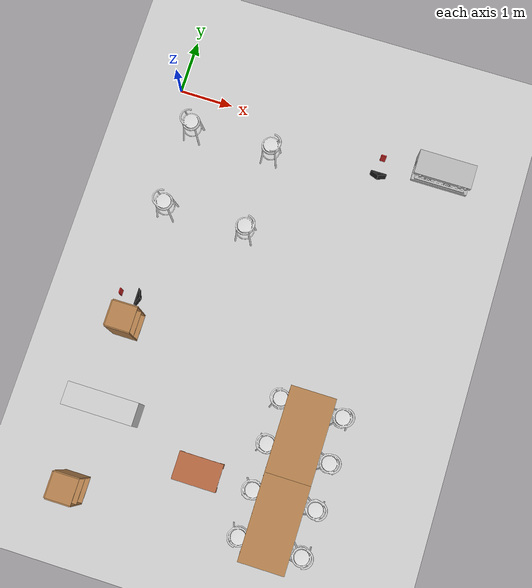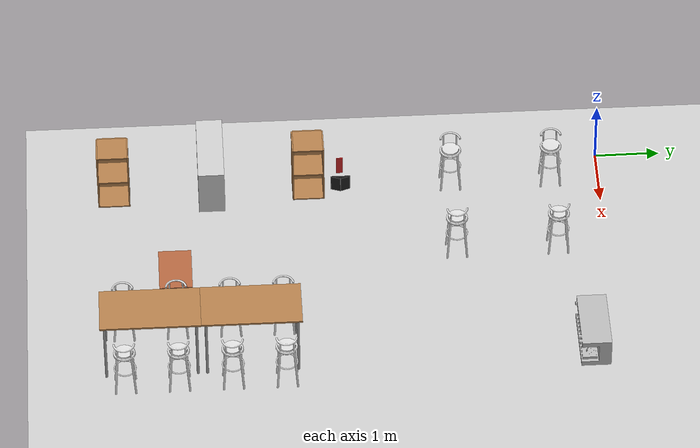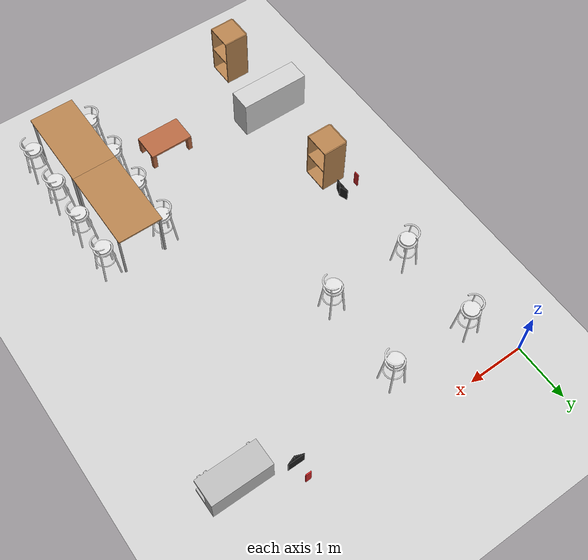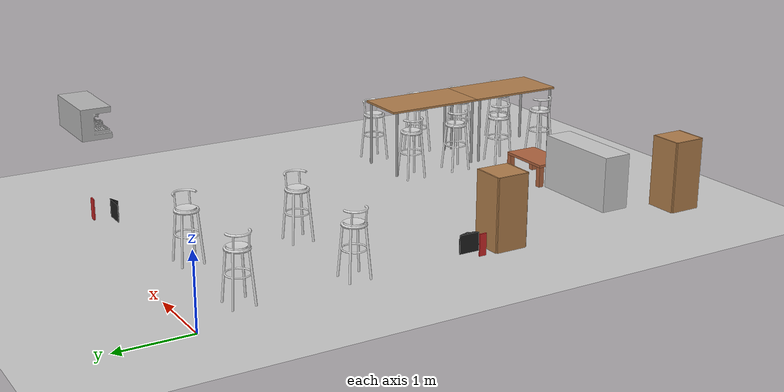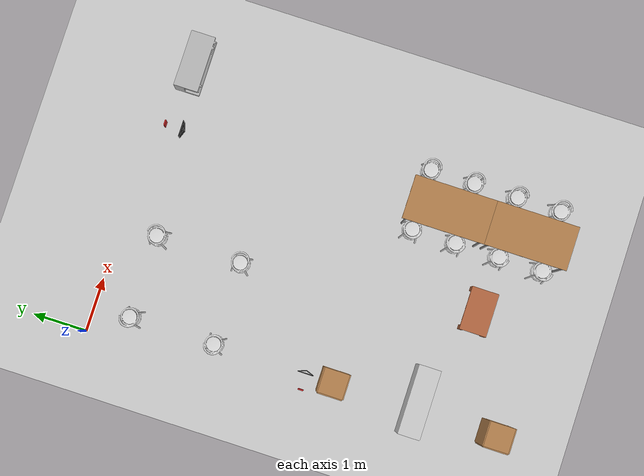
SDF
<sdf version="1.6">
 <world name="default">
  <include><uri>model://ground_plane</uri></include>
  <include><uri>model://sun</uri></include>
  <scene><shadows>false</shadows></scene>
  <physics type="ode">
   <real_time_update_rate>1000.0</real_time_update_rate>
   <max_step_size>0.001</max_step_size>
   <real_time_factor>1</real_time_factor>
   <ode>
    <solver>
     <type>quick</type>
     <iters>150</iters>
     <precon_iters>0</precon_iters>
     <sor>1.400000</sor>
     <use_dynamic_moi_rescaling>1</use_dynamic_moi_rescaling>
    </solver>
    <constraints>
     <cfm>0.00001</cfm>
     <erp>0.2</erp>
     <contact_max_correcting_vel>2000.000000</contact_max_correcting_vel>
     <contact_surface_layer>0.01000</contact_surface_layer>
    </constraints>
   </ode>
  </physics>
  <model name="reflective_tag_1">
   <pose>4 -0.20 0.2 0 0 0</pose>
   <static>1</static>
   <include><uri>model://reflective_tag</uri></include>
  </model>
  <model name="reflective_tag_2">
   <pose>0.2 -4.0 0.2 0 0 1.57</pose>
   <static>1</static>
   <include><uri>model://reflective_tag</uri></include>
  </model>
  <model name="dock_1">
   <pose>4 -0.5 0 0 0 0</pose>
   <static>1</static>
   <include><uri>model://trapezium</uri></include>
  </model>
  <model name="dock_2">
   <pose>0.5 -4.0 0.0 0 0 1.57</pose>
   <static>1</static>
   <include><uri>model://trapezium</uri></include>
  </model>
  <model name="couch">
   <static>1</static>
   <include><uri>model://couch</uri></include>
   <pose>0.65 -6.0 0.35 0 0 1.57</pose>
  </model>
  <model name="barstool_9">
   <static>1</static>
   <include><uri>model://barstool</uri></include>
   <pose>0.5 -0.75 0 1.57 0 1.57</pose>
  </model>
  <model name="barstool_10">
   <static>1</static>
   <include><uri>model://barstool</uri></include>
   <pose>0.5 -2.3 0 1.57 0 1.57</pose>
  </model>
  <model name="barstool_11">
   <static>1</static>
   <include><uri>model://barstool</uri></include>
   <pose>2.0 -0.75 0 1.57 0 -1.57</pose>
  </model>
  <model name="barstool_12">
   <static>1</static>
   <include><uri>model://barstool</uri></include>
   <pose>2.0 -2.3 0 1.57 0 -1.57</pose>
  </model>
  <model name="coffee_table">
   <static>1</static>
   <include><uri>model://coffee_table</uri></include>
   <pose>2.5 -6.6 0 0 0 1.57</pose>
  </model>
  <model name="cabinet">
   <static>1</static>
   <include><uri>model://cabinet</uri></include>
   <pose>0.5 -4.5 0 0 0 3.1416</pose>
  </model>
  <model name="cabinet_2">
   <static>1</static>
   <include><uri>model://cabinet</uri></include>
   <pose>0.5 -7.5 0 0 0 3.1416</pose>
  </model>
  <model name="high_table">
   <static>1</static>
   <include><uri>model://table</uri></include>
   <pose>4.0 -5.5 0 0 0 1.57</pose>
  </model>
  <model name="high_table_2">
   <static>1</static>
   <include><uri>model://table</uri></include>
   <pose>4.0 -7.0 0 0 0 1.57</pose>
  </model>
  <model name="espresso_machine">
   <static>1</static>
   <include><uri>model://espresso_machine</uri></include>
   <pose>5.0 -0.5 0.9 0 0 0</pose>
  </model>
  <model name="barstool">
   <static>1</static>
   <include><uri>model://barstool</uri></include>
   <pose>3.5 -5.0 0 1.57 0 1.57</pose>
  </model>
  <model name="barstool_2">
   <static>1</static>
   <include><uri>model://barstool</uri></include>
   <pose>3.5 -5.8 0 1.57 0 1.57</pose>
  </model>
  <model name="barstool_3">
   <static>1</static>
   <include><uri>model://barstool</uri></include>
   <pose>3.5 -6.6 0 1.57 0 1.57</pose>
  </model>
  <model name="barstool_4">
   <static>1</static>
   <include><uri>model://barstool</uri></include>
   <pose>3.5 -7.4 0 1.57 0 1.57</pose>
  </model>
  <model name="barstool_5">
   <static>1</static>
   <include><uri>model://barstool</uri></include>
   <pose>4.6 -5.0 0 1.57 0 -1.57</pose>
  </model>
  <model name="barstool_6">
   <static>1</static>
   <include><uri>model://barstool</uri></include>
   <pose>4.6 -5.8 0 1.57 0 -1.57</pose>
  </model>
  <model name="barstool_7">
   <static>1</static>
   <include><uri>model://barstool</uri></include>
   <pose>4.6 -6.6 0 1.57 0 -1.57</pose>
  </model>
  <model name="barstool_8">
   <static>1</static>
   <include><uri>model://barstool</uri></include>
   <pose>4.6 -7.4 0 1.57 0 -1.57</pose>
  </model>
  <light name="user_point_light_2" type="point">
   <pose>3.0 -4.5 4.0 0 0 0</pose>
   <diffuse>0.2 0.2 0.2 1</diffuse>
   <specular>0.1 0.1 0.1 1</specular>
   <attenuation>
    <range>10</range>
    <constant>0.5</constant>
    <linear>0.01</linear>
    <quadratic>0.001</quadratic>
   </attenuation>
   <cast_shadows>0</cast_shadows>
   <direction>0 0 -1</direction>
  </light>
 </world>
</sdf>

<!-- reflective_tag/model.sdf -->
<sdf version='1.4'>
  <model name="reflective_tag">
      <static>1</static>
      <link name='link'>
        <inertial>
          <mass>0.25</mass>
          <inertia>
            <ixx>0.00015</ixx>
            <ixy>0.000000</ixy>
            <ixz>0.000000</ixz>
            <iyy>0.00015</iyy>
            <iyz>0.000000</iyz>
            <izz>0.00015</izz>
          </inertia>
        </inertial>
        <collision name='collision'>
          <geometry>
            <box>
              <size>0.10 0.02 0.30</size>
            </box>
          </geometry>
          <laser_retro>8000</laser_retro>
          <surface>
            <friction>
              <ode>
                <mu>30.0</mu>
                <mu2>30.0</mu2>
              </ode>
            </friction>
            <contact>
              <ode>
                <kp>1000000.0</kp>
                <kd>100.0</kd>
                <max_vel>1.0</max_vel>
                <min_depth>0.002</min_depth>
              </ode>
            </contact>
          </surface>
        </collision>
        <visual name='visual'>
          <geometry>
            <box>
              <size>0.10 0.02 0.30</size>
            </box>
          </geometry>
          <material>
            <script>
              <uri>file://media/materials/scripts/gazebo.material</uri>
              <name>Gazebo/Red</name>
            </script>
          </material>
        </visual>
        <velocity_decay>
          <linear>0.000000</linear>
          <angular>0.000000</angular>
        </velocity_decay>
        <self_collide>0</self_collide>
        <kinematic>0</kinematic>
        <gravity>1</gravity>
      </link>
  </model>
</sdf>

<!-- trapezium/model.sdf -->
<sdf version='1.5'>
  <model name="trapezium">
      <static>1</static>
      <link name='link'>
        <inertial>
          <mass>0.25</mass>
          <inertia>
            <ixx>0.00015</ixx>
            <ixy>0.000000</ixy>
            <ixz>0.000000</ixz>
            <iyy>0.00015</iyy>
            <iyz>0.000000</iyz>
            <izz>0.00015</izz>
          </inertia>
        </inertial>
        <collision name='front_c'>
          <geometry>
            <box>
              <size>0.30 0.01 0.50</size>
            </box>
          </geometry>
          <laser_retro>8000</laser_retro>
          <surface>
            <friction>
              <ode>
                <mu>30.0</mu>
                <mu2>30.0</mu2>
              </ode>
            </friction>
            <contact>
              <ode>
                <kp>1000000.0</kp>
                <kd>100.0</kd>
                <max_vel>1.0</max_vel>
                <min_depth>0.002</min_depth>
              </ode>
            </contact>
          </surface>
        </collision>
        <visual name='front_v'>
          <geometry>
            <box>
              <size>0.30 0.01 0.50</size>
            </box>
          </geometry>
          <material>
            <script>
              <uri>file://media/materials/scripts/gazebo.material</uri>
              <name>Gazebo/Black</name>
            </script>
          </material>
        </visual>
        <collision name="side_1_c">
          <pose>0.075 -0.0256515 0 0 0 0.3490658503988659</pose>
          <geometry>
            <box>
              <size>0.159626 0.01 0.5</size>
            </box>
          </geometry>
          <laser_retro>8000</laser_retro>
        </collision>
        <visual name="side_1_v">
          <pose>0.075 -0.0256515 0 0 0 0.3490658503988659</pose>
          <geometry>
            <box>
              <size>0.159626 0.01 0.5</size>
            </box>
          </geometry>
          <material>
            <script>
              <uri>file://media/materials/scripts/gazebo.material</uri>
              <name>Gazebo/Black</name>
            </script>
          </material>
        </visual>
        <collision name="side_2_c">
          <pose>-0.075 -0.0256515 0 0 0 -0.3490658503988659</pose>
          <geometry>
            <box>
              <size>0.159626 0.01 0.5</size>
            </box>
          </geometry>
          <laser_retro>8000</laser_retro>
        </collision>
        <visual name="side_2_v">
          <pose>-0.075 -0.0256515 0 0 0 -0.3490658503988659</pose>
          <geometry>
            <box>
              <size>0.159626 0.01 0.5</size>
            </box>
          </geometry>
          <material>
            <script>
              <uri>file://media/materials/scripts/gazebo.material</uri>
              <name>Gazebo/Black</name>
            </script>
          </material>
        </visual>
        <velocity_decay>
          <linear>0.000000</linear>
          <angular>0.000000</angular>
        </velocity_decay>
        <self_collide>0</self_collide>
        <kinematic>0</kinematic>
        <gravity>1</gravity>
      </link>
  </model>
</sdf>

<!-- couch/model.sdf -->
<sdf version="1.6">
  <model name="ddw/couch">
    <link name="1_link">
      <collision name="1_col">
        <geometry>
          <box>
            <size>0.4 1.25 0.75</size>
          </box>
        </geometry>
        <pose>0.0 0.0 0.375 0 0 0</pose>
      </collision>
      <visual name="1_vis">
        <geometry>
          <box>
            <size>0.4 1.25 0.75</size>
          </box>
        </geometry>
        <material>
          <ambient>0.8 0.8 0.8 1</ambient>
        </material>
        <pose>0.0 0.0 0.375 0 0 0</pose>
      </visual>
      <pose>0 0 0 0 0 0</pose>
    </link>
    <link name="in_front_of">
      <virtual_volume name="in_front_of_vv">
        <geometry>
          <box>
            <size>0.9 0.6 0.01</size>
          </box>
        </geometry>
        <pose>0.45 0.0 0.005 0 0 0</pose>
      </virtual_volume>
    </link>
    <link name="on_top_of">
      <virtual_volume name="on_top_of_vv">
        <geometry>
          <box>
            <size>0.4 1.25 0.43</size>
          </box>
        </geometry>
        <pose>0.0 0.0 0.985 0 0 0</pose>
      </virtual_volume>
    </link>
    <static>true</static>
  </model>
</sdf>

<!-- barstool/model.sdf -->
<sdf version="1.5">
  <model name="barstool">
    <static>true</static>
    <pose>0 0 0 0 0 0</pose>
    <link name="body">
      <inertial>
        <mass>5</mass>
        <inertia>
          <ixx>1.0</ixx>
          <ixy>0.0</ixy>
          <iyy>1.0</iyy>
          <ixz>0.0</ixz>
          <iyz>0.0</iyz>
          <izz>1.0</izz>
        </inertia>
        <pose>0 0 0 0 0 0</pose>
      </inertial>
      <visual name="visual">
        <geometry>
          <mesh>
            <uri>model://barstool/meshes/barstool.dae</uri>
            <scale>0.01 0.01 0.01</scale>
          </mesh>
        </geometry>
      </visual>
    </link>
  </model>
</sdf>

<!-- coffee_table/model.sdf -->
<sdf version="1.6">
  <model name="coffee_table">
    <link name="1_link">
      <collision name="1_col">
        <geometry>
          <box>
            <size>0.5 0.8 0.04</size>
          </box>
        </geometry>
      </collision>
      <visual name="1_vis">
        <geometry>
          <box>
            <size>0.5 0.8 0.04</size>
          </box>
        </geometry>
        <material>
          <ambient>0.7 0.4 0.25 1</ambient>
        </material>
      </visual>
      <pose>0 0 0.32 0 0 0</pose>
    </link>
    <link name="2_link">
      <collision name="2_col">
        <geometry>
          <box>
            <size>0.08 0.08 0.3</size>
          </box>
        </geometry>
      </collision>
      <visual name="2_vis">
        <geometry>
          <box>
            <size>0.08 0.08 0.3</size>
          </box>
        </geometry>
        <material>
          <ambient>0.7 0.4 0.25 1</ambient>
        </material>
      </visual>
      <pose>-0.21 -0.36 0.15 0 0 0</pose>
    </link>
    <link name="3_link">
      <collision name="3_col">
        <geometry>
          <box>
            <size>0.08 0.08 0.3</size>
          </box>
        </geometry>
      </collision>
      <visual name="3_vis">
        <geometry>
          <box>
            <size>0.08 0.08 0.3</size>
          </box>
        </geometry>
        <material>
          <ambient>0.7 0.4 0.25 1</ambient>
        </material>
      </visual>
      <pose>-0.21 0.36 0.15 0 0 0</pose>
    </link>
    <link name="4_link">
      <collision name="4_col">
        <geometry>
          <box>
            <size>0.08 0.08 0.3</size>
          </box>
        </geometry>
      </collision>
      <visual name="4_vis">
        <geometry>
          <box>
            <size>0.08 0.08 0.3</size>
          </box>
        </geometry>
        <material>
          <ambient>0.7 0.4 0.25 1</ambient>
        </material>
      </visual>
      <pose>0.21 0.36 0.15 0 0 0</pose>
    </link>
    <link name="5_link">
      <collision name="5_col">
        <geometry>
          <box>
            <size>0.08 0.08 0.3</size>
          </box>
        </geometry>
      </collision>
      <visual name="5_vis">
        <geometry>
          <box>
            <size>0.08 0.08 0.3</size>
          </box>
        </geometry>
        <material>
          <ambient>0.7 0.4 0.25 1</ambient>
        </material>
      </visual>
      <pose>0.21 -0.36 0.15 0 0 0</pose>
    </link>
    <static>true</static>
  </model>
</sdf>

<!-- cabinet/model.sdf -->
<sdf version="1.5">
  <model name="cabinet">
    <static>true</static>
    <link name="cabinet_bottom_plate">
      <inertial>
        <pose>0 0 -1 0 0 0</pose>
        <inertia>
          <ixx>2.050000</ixx>
          <ixy>0</ixy>
          <ixz>0</ixz>
          <iyy>2.050000</iyy>
          <iyz>0</iyz>
          <izz>2.050000</izz>
        </inertia>
        <mass>25.000000</mass>
      </inertial>
      <collision name="cabinet_bottom_plate_geom">
        <pose>0 0 0.010000 0 0 0</pose>
        <geometry>
          <box>
            <size>0.450000 0.450000 0.020000</size>
          </box>
        </geometry>
      </collision>
      <visual name="cabinet_bottom_plate_geom_visual">
        <pose>0 0 0.010000 0 0 0</pose>
        <geometry>
          <box>
            <size>0.450000 0.450000 0.020000</size>
          </box>
        </geometry>
        <material>
          <script>
            <uri>model://media/materials/scripts/gazebo.material</uri>
            <name>Gazebo/Wood</name>
          </script>
        </material>
      </visual>
      <collision name="cabinet_bottom_plate_geom_cabinet_back_plate">
        <pose>0.235000 0 0.510000 0 0 0</pose>
        <geometry>
          <box>
            <size>0.020000 0.450000 1.020000</size>
          </box>
        </geometry>
      </collision>
      <visual name="cabinet_bottom_plate_geom_cabinet_back_plate_visual">
        <pose>0.235000 0 0.510000 0 0 0</pose>
        <geometry>
          <box>
            <size>0.020000 0.450000 1.020000</size>
          </box>
        </geometry>
        <material>
          <script>
            <uri>model://media/materials/scripts/gazebo.material</uri>
            <name>Gazebo/Wood</name>
          </script>
        </material>
      </visual>
      <collision name="cabinet_bottom_plate_geom_cabinet_left_plate">
        <pose>0 0.235000 0.510000 0 0 0</pose>
        <geometry>
          <box>
            <size>0.450000 0.020000 1.020000</size>
          </box>
        </geometry>
      </collision>
      <visual name="cabinet_bottom_plate_geom_cabinet_left_plate_visual">
        <pose>0 0.235000 0.510000 0 0 0</pose>
        <geometry>
          <box>
            <size>0.450000 0.020000 1.020000</size>
          </box>
        </geometry>
        <material>
          <script>
            <uri>model://media/materials/scripts/gazebo.material</uri>
            <name>Gazebo/Wood</name>
          </script>
        </material>
      </visual>
      <collision name="cabinet_bottom_plate_geom_cabinet_middle_plate">
        <pose>0 0 0.510000 0 0 0</pose>
        <geometry>
          <box>
            <size>0.450000 0.450000 0.020000</size>
          </box>
        </geometry>
      </collision>
      <visual name="cabinet_bottom_plate_geom_cabinet_middle_plate_visual">
        <pose>0 0 0.510000 0 0 0</pose>
        <geometry>
          <box>
            <size>0.450000 0.450000 0.020000</size>
          </box>
        </geometry>
        <material>
          <script>
            <uri>model://media/materials/scripts/gazebo.material</uri>
            <name>Gazebo/Wood</name>
          </script>
        </material>
      </visual>
      <collision name="cabinet_bottom_plate_geom_cabinet_right_plate">
        <pose>0 -0.235000 0.510000 0 0 0</pose>
        <geometry>
          <box>
            <size>0.450000 0.020000 1.020000</size>
          </box>
        </geometry>
      </collision>
      <visual name="cabinet_bottom_plate_geom_cabinet_right_plate_visual">
        <pose>0 -0.235000 0.510000 0 0 0</pose>
        <geometry>
          <box>
            <size>0.450000 0.020000 1.020000</size>
          </box>
        </geometry>
        <material>
          <script>
            <uri>model://media/materials/scripts/gazebo.material</uri>
            <name>Gazebo/Wood</name>
          </script>
        </material>
      </visual>
      <collision name="cabinet_bottom_plate_geom_cabinet_top_plate">
        <pose>0 0 1.010000 0 0 0</pose>
        <geometry>
          <box>
            <size>0.450000 0.450000 0.020000</size>
          </box>
        </geometry>
      </collision>
      <visual name="cabinet_bottom_plate_geom_cabinet_top_plate_visual">
        <pose>0 0 1.010000 0 0 0</pose>
        <geometry>
          <box>
            <size>0.450000 0.450000 0.020000</size>
          </box>
        </geometry>
        <material>
          <script>
            <uri>model://media/materials/scripts/gazebo.material</uri>
            <name>Gazebo/Wood</name>
          </script>
        </material>
      </visual>
    </link>
  </model>
</sdf>

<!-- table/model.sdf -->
<sdf version="1.5">
  <model name="table">
    <static>true</static>
    <link name="link">
      <collision name="surface">
        <pose>0 0 1.0 0 0 0</pose>
        <geometry>
          <box>
            <size>1.5 0.8 0.03</size>
          </box>
        </geometry>
        <surface>
          <friction>
            <ode>
              <mu>0.6</mu>
              <mu2>0.6</mu2>
            </ode>
          </friction>
        </surface>
      </collision>
      <visual name="visual1">
        <pose>0 0 1.0 0 0 0</pose>
        <geometry>
          <box>
            <size>1.5 0.8 0.03</size>
          </box>
        </geometry>
        <material>
          <script>
            <uri>model://media/materials/scripts/gazebo.material</uri>
            <name>Gazebo/Wood</name>
          </script>
        </material>
      </visual>
      <collision name="front_left_leg">
        <pose>0.68 0.38 0.5 0 0 0</pose>
        <geometry>
          <cylinder>
            <radius>0.02</radius>
            <length>1.0</length>
          </cylinder>
        </geometry>
      </collision>
      <visual name="front_left_leg">
        <pose>0.68 0.38 0.5 0 0 0</pose>
        <geometry>
          <cylinder>
            <radius>0.02</radius>
            <length>1.0</length>
          </cylinder>
        </geometry>
        <material>
          <script>
            <uri>model://media/materials/scripts/gazebo.material</uri>
            <name>Gazebo/Grey</name>
          </script>
        </material>
      </visual>
      <collision name="front_right_leg">
        <pose>0.68 -0.38 0.5 0 0 0</pose>
        <geometry>
          <cylinder>
            <radius>0.02</radius>
            <length>1.0</length>
          </cylinder>
        </geometry>
      </collision>
      <visual name="front_right_leg">
        <pose>0.68 -0.38 0.5 0 0 0</pose>
        <geometry>
          <cylinder>
            <radius>0.02</radius>
            <length>1.0</length>
          </cylinder>
        </geometry>
        <material>
          <script>
            <uri>model://media/materials/scripts/gazebo.material</uri>
            <name>Gazebo/Grey</name>
          </script>
        </material>
      </visual>
      <collision name="back_right_leg">
        <pose>-0.68 -0.38 0.5 0 0 0</pose>
        <geometry>
          <cylinder>
            <radius>0.02</radius>
            <length>1.0</length>
          </cylinder>
        </geometry>
      </collision>
      <visual name="back_right_leg">
        <pose>-0.68 -0.38 0.5 0 0 0</pose>
        <geometry>
          <cylinder>
            <radius>0.02</radius>
            <length>1.0</length>
          </cylinder>
        </geometry>
        <material>
          <script>
            <uri>model://media/materials/scripts/gazebo.material</uri>
            <name>Gazebo/Grey</name>
          </script>
        </material>
      </visual>
      <collision name="back_left_leg">
        <pose>-0.68 0.38 0.5 0 0 0</pose>
        <geometry>
          <cylinder>
            <radius>0.02</radius>
            <length>1.0</length>
          </cylinder>
        </geometry>
      </collision>
      <visual name="back_left_leg">
        <pose>-0.68 0.38 0.5 0 0 0</pose>
        <geometry>
          <cylinder>
            <radius>0.02</radius>
            <length>1.0</length>
          </cylinder>
        </geometry>
        <material>
          <script>
            <uri>model://media/materials/scripts/gazebo.material</uri>
            <name>Gazebo/Grey</name>
          </script>
        </material>
      </visual>
    </link>
  </model>
</sdf>

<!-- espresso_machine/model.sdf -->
<sdf version="1.5">
  <model name="espresso_machine">
    <static>true</static>
    <pose>0 0 0 0 0 0</pose>
    <link name="body">
      <inertial>
        <mass>5</mass>
        <inertia>
          <ixx>1.0</ixx>
          <ixy>0.0</ixy>
          <iyy>1.0</iyy>
          <ixz>0.0</ixz>
          <iyz>0.0</iyz>
          <izz>1.0</izz>
        </inertia>
        <pose>0 0 0 0 0 0</pose>
      </inertial>
      <collision name="collision">
        <geometry>
          <mesh>
            <uri>model://espresso_machine/meshes/espresso_machine.dae</uri>
            <scale>0.5 0.5 0.5</scale>
          </mesh>
        </geometry>
      </collision>
      <visual name="visual">
        <geometry>
          <mesh>
            <uri>model://espresso_machine/meshes/espresso_machine.dae</uri>
            <scale>0.5 0.5 0.5</scale>
          </mesh>
        </geometry>
      </visual>
    </link>
  </model>
</sdf>
